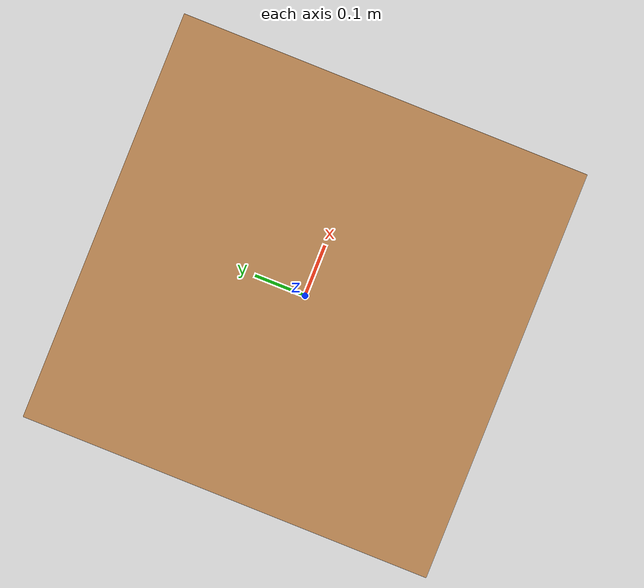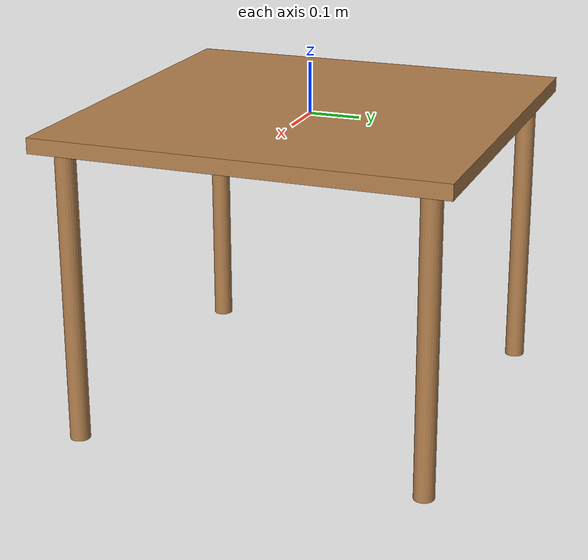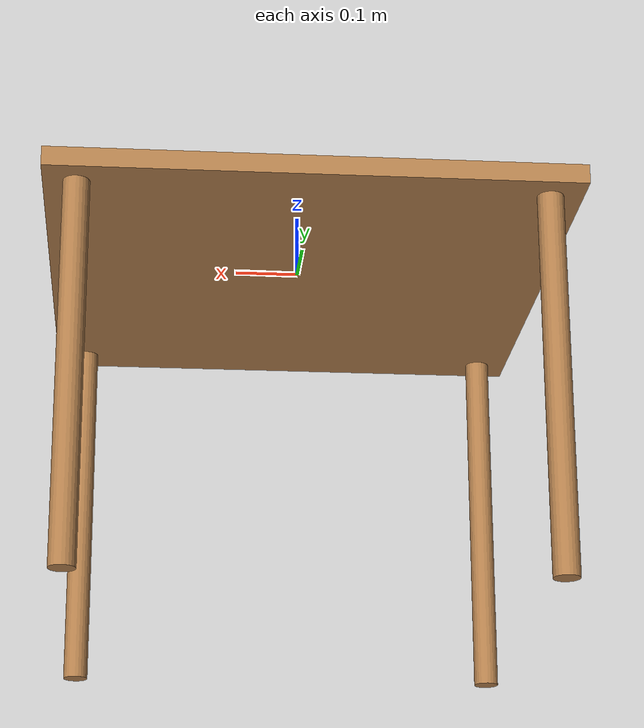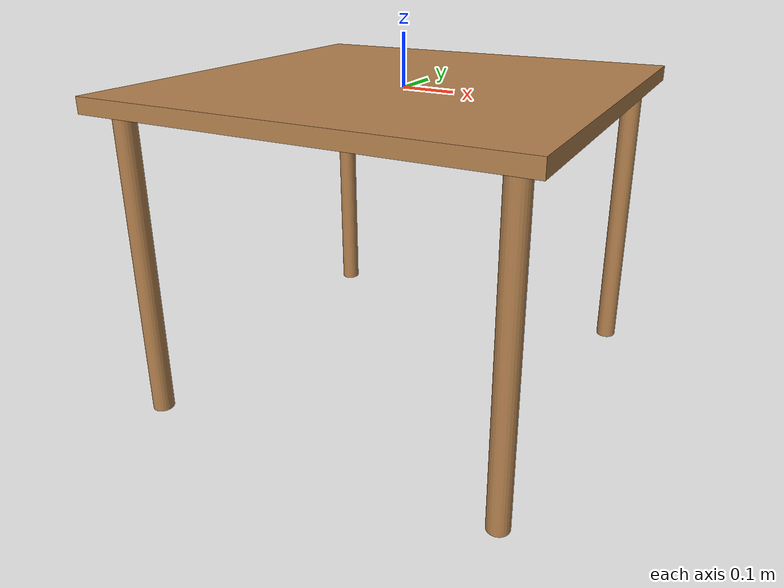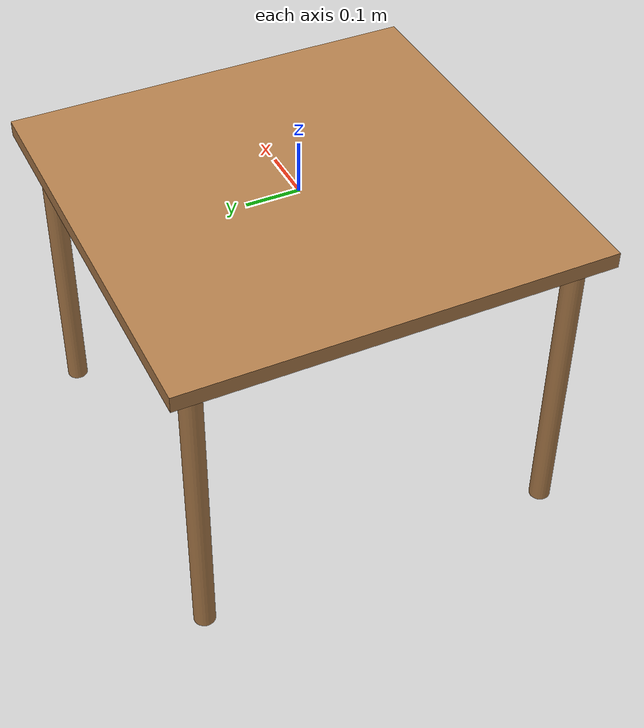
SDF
<?xml version="1.0" ?>
<sdf version="1.7">
  <model name="table">
    <static>true</static>
    <link name="table_link">
      <visual name="visual">
        <geometry>
          <box>
            <size>0.8 0.8 0.03</size>
          </box>
        </geometry>
        <material>
          <ambient>0.7 0.5 0.3 1</ambient>
          <diffuse>0.7 0.5 0.3 1</diffuse>
          <specular>0.1 0.1 0.1 1</specular>
        </material>
      </visual>

      <collision name="collision">
        <geometry>
          <box>
            <size>0.8 0.8 0.03</size>
          </box>
        </geometry>
      </collision>

      <visual name="leg1">
        <pose>0.35 0.35 -0.3 0 0 0</pose>
        <geometry>
          <cylinder>
            <radius>0.02</radius>
            <length>0.6</length>
          </cylinder>
        </geometry>
        <material>
          <ambient>0.7 0.5 0.3 1</ambient>
          <diffuse>0.7 0.5 0.3 1</diffuse>
          <specular>0.1 0.1 0.1 1</specular>
        </material>
      </visual>

      <visual name="leg2">
        <pose>-0.35 0.35 -0.3 0 0 0</pose>
        <geometry>
          <cylinder>
            <radius>0.02</radius>
            <length>0.6</length>
          </cylinder>
        </geometry>
        <material>
          <ambient>0.7 0.5 0.3 1</ambient>
          <diffuse>0.7 0.5 0.3 1</diffuse>
          <specular>0.1 0.1 0.1 1</specular>
        </material>
      </visual>

      <visual name="leg3">
        <pose>0.35 -0.35 -0.3 0 0 0</pose>
        <geometry>
          <cylinder>
            <radius>0.02</radius>
            <length>0.6</length>
          </cylinder>
        </geometry>
        <material>
          <ambient>0.7 0.5 0.3 1</ambient>
          <diffuse>0.7 0.5 0.3 1</diffuse>
          <specular>0.1 0.1 0.1 1</specular>
        </material>
      </visual>

      <visual name="leg4">
        <pose>-0.35 -0.35 -0.3 0 0 0</pose>
        <geometry>
          <cylinder>
            <radius>0.02</radius>
            <length>0.6</length>
          </cylinder>
        </geometry>
        <material>
          <ambient>0.7 0.5 0.3 1</ambient>
          <diffuse>0.7 0.5 0.3 1</diffuse>
          <specular>0.1 0.1 0.1 1</specular>
        </material>
      </visual>

      <collision name="leg1_collision">
        <pose>0.35 0.35 -0.3 0 0 0</pose>
        <geometry>
          <cylinder>
            <radius>0.02</radius>
            <length>0.6</length>
          </cylinder>
        </geometry>
      </collision>

      <collision name="leg2_collision">
        <pose>-0.35 0.35 -0.3 0 0 0</pose>
        <geometry>
          <cylinder>
            <radius>0.02</radius>
            <length>0.6</length>
          </cylinder>
        </geometry>
      </collision>

      <collision name="leg3_collision">
        <pose>0.35 -0.35 -0.3 0 0 0</pose>
        <geometry>
          <cylinder>
            <radius>0.02</radius>
            <length>0.6</length>
          </cylinder>
        </geometry>
      </collision>

      <collision name="leg4_collision">
        <pose>-0.35 -0.35 -0.3 0 0 0</pose>
        <geometry>
          <cylinder>
            <radius>0.02</radius>
            <length>0.6</length>
          </cylinder>
        </geometry>
      </collision>
    </link>
  </model>
</sdf>
